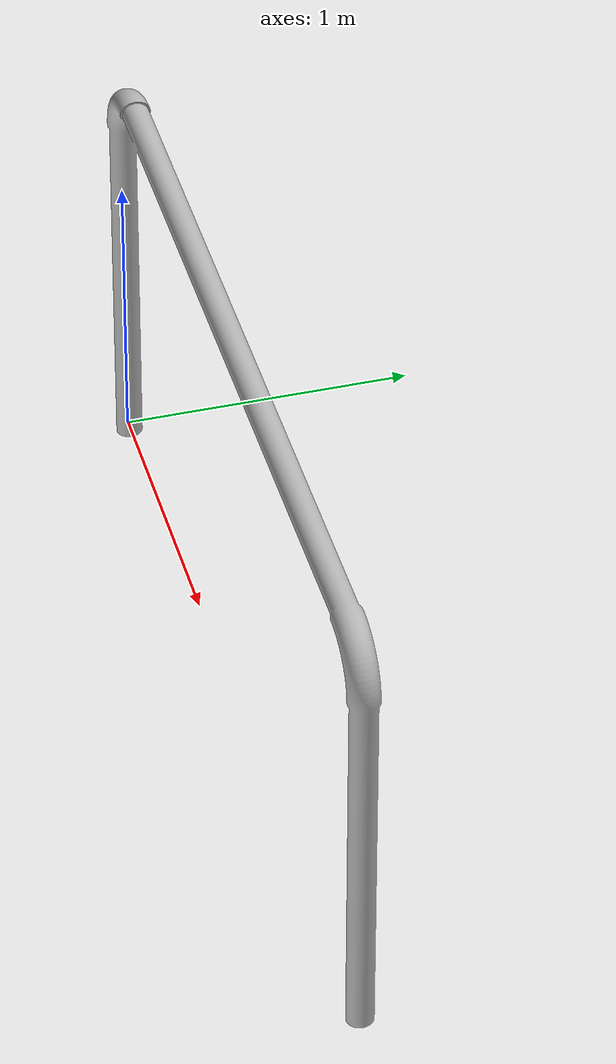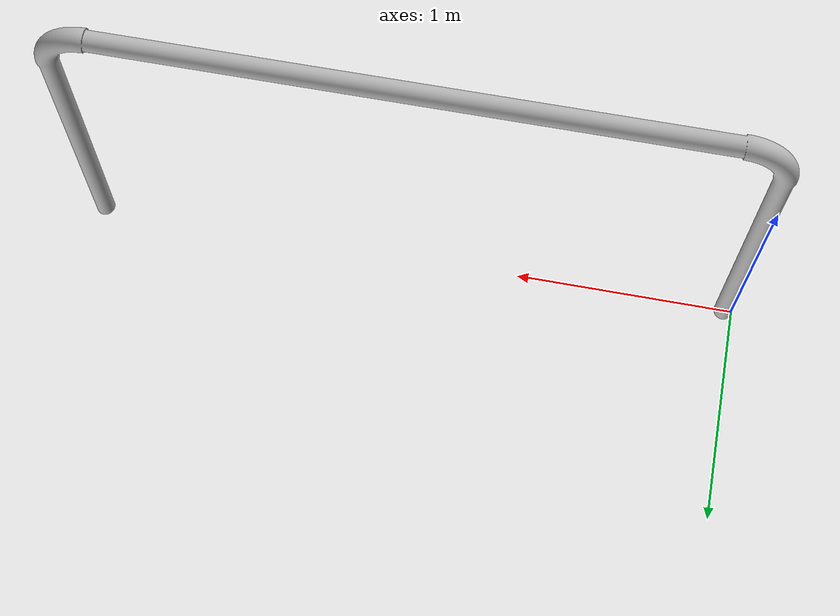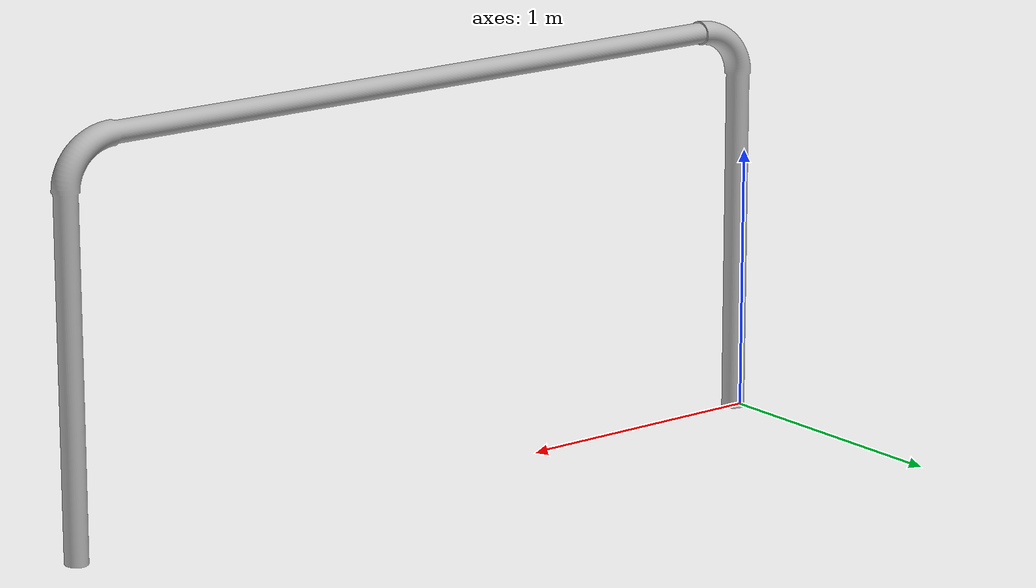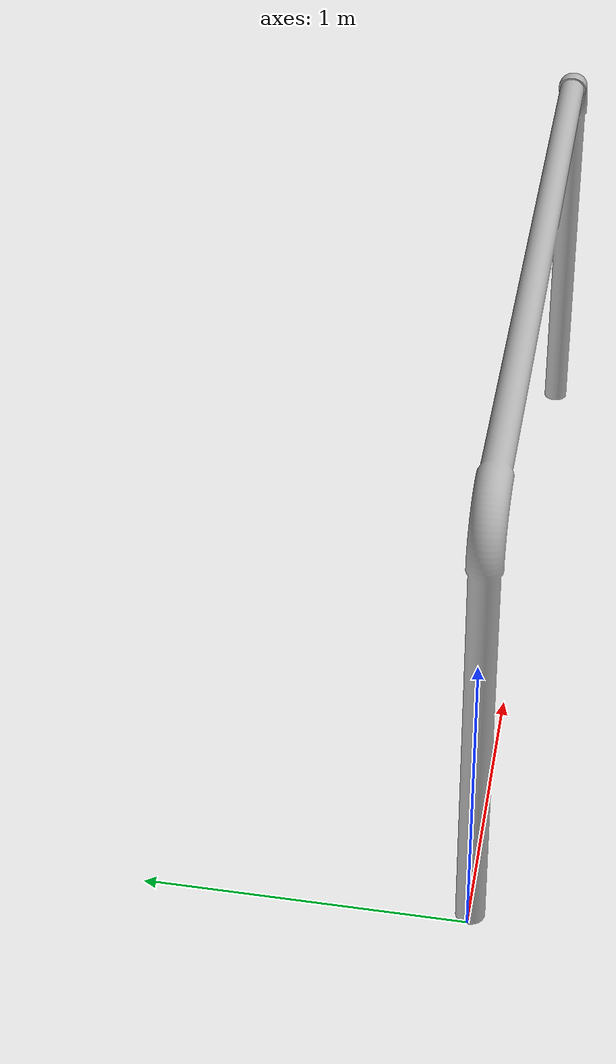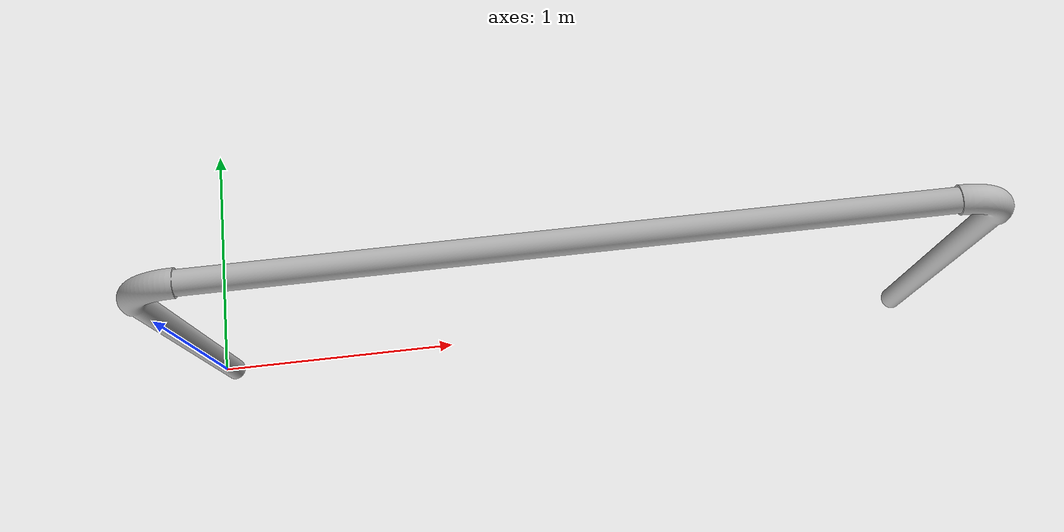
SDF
<?xml version="1.0"?>
<sdf version="1.5">
  <model name="start_gate">
    <static>true</static>
    <link name="start_gate">
      <collision name='start_gatecol'>
        <pose>0 0 0 1.57 0 0</pose>
        <geometry>
          <mesh>
            <uri>file://start_gate/start_gate.dae</uri>
          </mesh>
        </geometry>
      </collision>
      <visual name="start_gatevis">
        <pose>0 0 0 1.57 0 0</pose>
        <geometry>
          <mesh>
            <uri>file://start_gate/start_gate.dae</uri>
          </mesh>
        </geometry>
      </visual>
    </link>
  </model>
</sdf>
